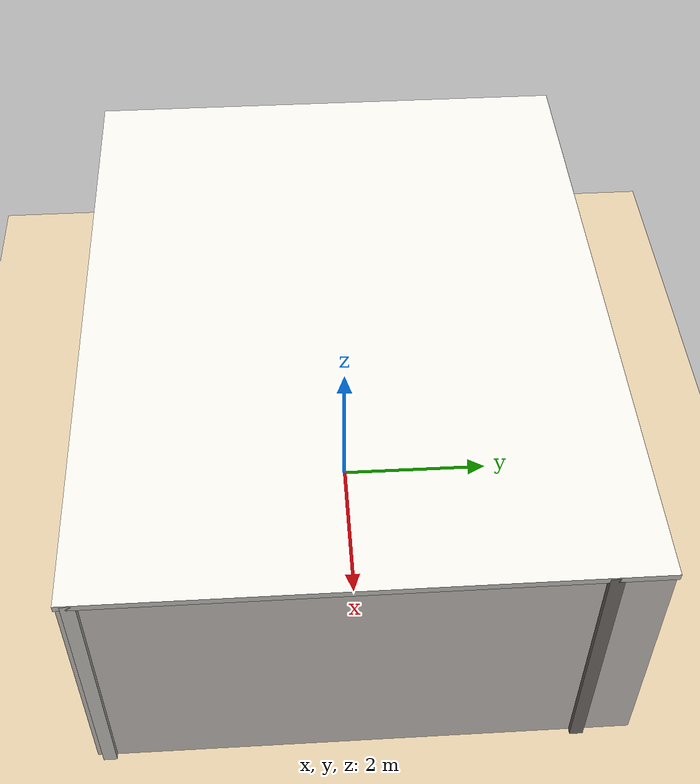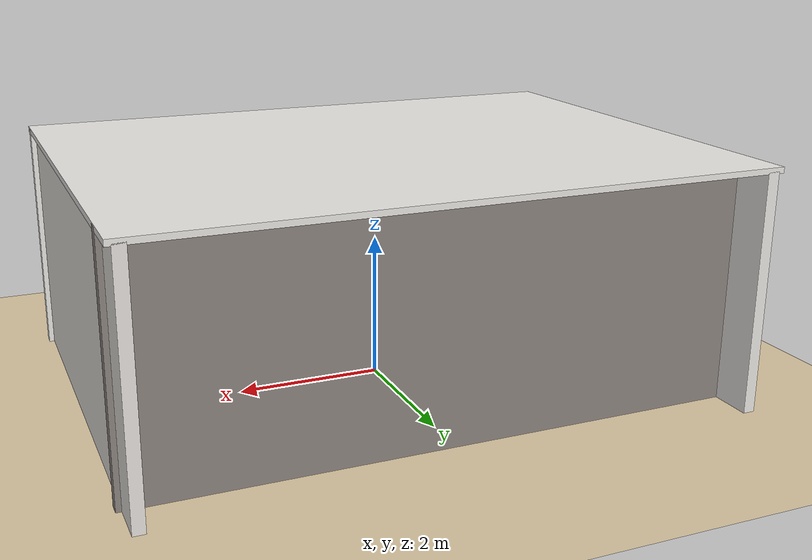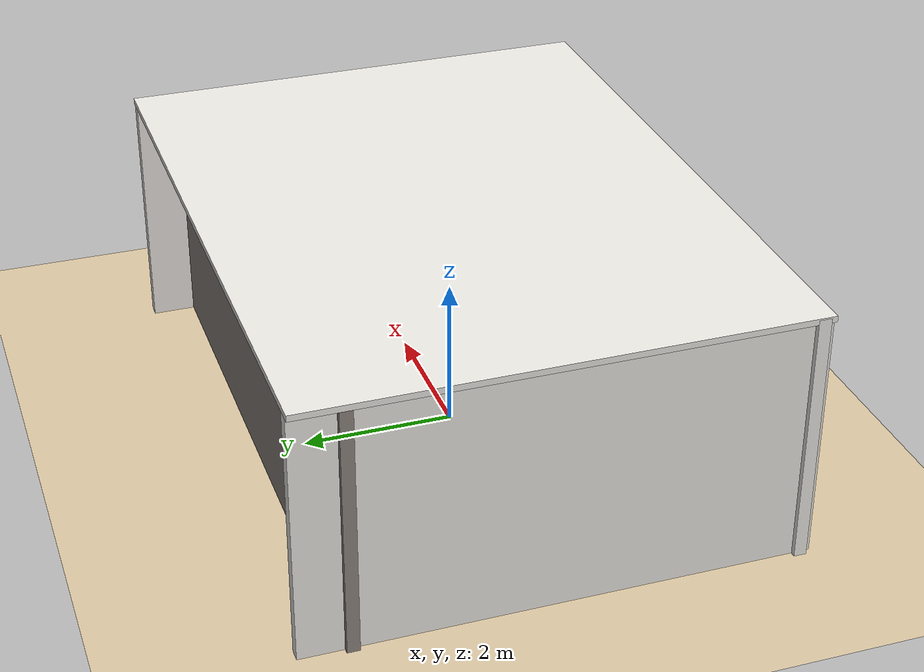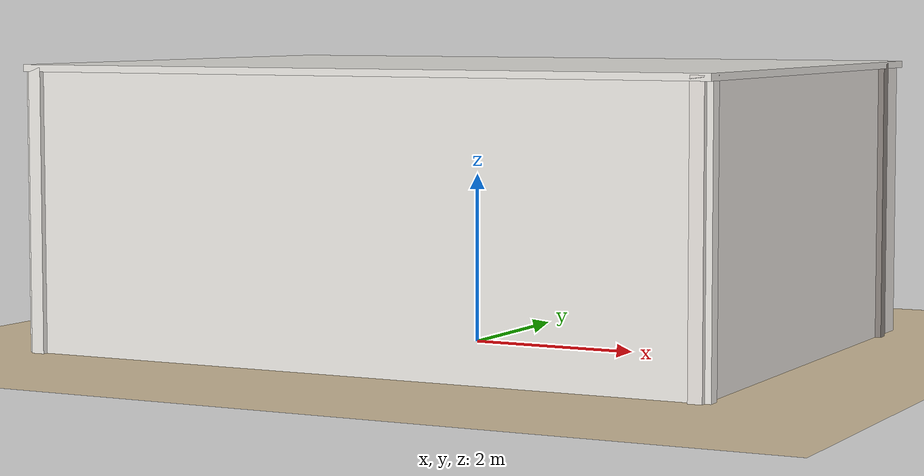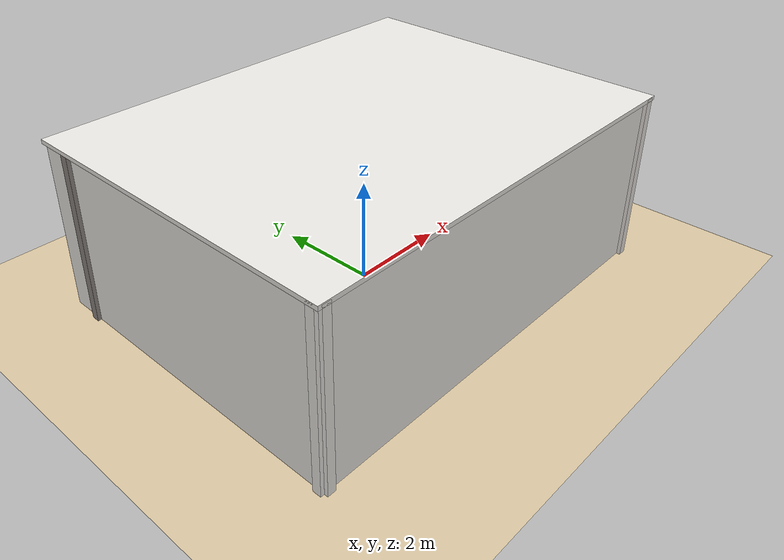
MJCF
<mujoco model="ocfo-virtual-office">
  <compiler angle="radian" autolimits="true" inertiafromgeom="true"/>
  <option gravity="0 0 -9.81" timestep="0.002" iterations="50" solver="Newton" cone="pyramidal">
    <flag contact="enable" energy="enable"/>
  </option>
  <visual>
    <headlight ambient="0.35 0.34 0.32" diffuse="0.45 0.44 0.40"/>
    <global offwidth="1280" offheight="720"/>
  </visual>
  <default>
    <joint limited="true" armature="0.02" damping="0.4"/>
    <geom condim="3" solref="0.02 1" solimp="0.9 0.95 0.001"/>
  </default>
  <asset>
    <texture name="wood" type="2d" builtin="checker" width="256" height="256" rgb1="0.80 0.70 0.54" rgb2="0.74 0.64 0.48"/>
    <material name="floor_mat" texture="wood" texrepeat="8 8" reflectance="0.08"/>
  </asset>

    <worldbody>
      <light name="sun" directional="true" pos="0 0 4" dir="0.2 0.2 -1" diffuse="0.55 0.52 0.48" specular="0.15 0.15 0.15"/>
      <light name="shelf" pos="1.15 2.05 2.1" dir="0 0 -1" diffuse="1.0 0.78 0.45" specular="0.3 0.2 0.1"/>
      <light name="spots" pos="-1.2 -0.4 3.1" dir="0.1 0.2 -1" diffuse="0.9 0.88 0.82"/>

      <geom name="floor" type="plane" size="6 6 0.1" rgba="0.86 0.78 0.64 1" friction="0.9 0.1 0.1"/>
      <geom name="ceiling" type="box" size="4.2 3.2 0.04" pos="0 0 3.28" rgba="0.93 0.92 0.90 1" contype="0" conaffinity="0"/>

      <geom name="wall_back" type="box" size="4.2 0.08 1.65" pos="0 2.55 1.65" rgba="0.55 0.52 0.50 1"/>
      <geom name="wall_right" type="box" size="0.08 3.2 1.65" pos="4.05 0 1.65" rgba="0.92 0.90 0.88 1"/>
      <geom name="wall_left" type="box" size="0.08 3.2 1.65" pos="-4.05 0 1.65" rgba="0.93 0.92 0.90 1"/>
      <geom name="wall_front" type="box" size="4.2 0.08 1.65" pos="0 -3.05 1.65" rgba="0.93 0.92 0.90 1" contype="0" conaffinity="0"/>

      <geom name="door" type="box" size="0.06 0.45 1.1" pos="-3.95 -2.35 1.15" rgba="0.12 0.12 0.12 1"/>

      <geom name="slat_0" type="box" size="0.025 0.035 1.35" pos="-3.550 -1.550 1.35" rgba="0.42 0.30 0.20 1" friction="0.8 0.1 0.1"/>
      <geom name="slat_1" type="box" size="0.025 0.035 1.35" pos="-3.550 -1.420 1.35" rgba="0.42 0.30 0.20 1" friction="0.8 0.1 0.1"/>
      <geom name="slat_2" type="box" size="0.025 0.035 1.35" pos="-3.550 -1.290 1.35" rgba="0.42 0.30 0.20 1" friction="0.8 0.1 0.1"/>
      <geom name="slat_3" type="box" size="0.025 0.035 1.35" pos="-3.550 -1.160 1.35" rgba="0.42 0.30 0.20 1" friction="0.8 0.1 0.1"/>
      <geom name="slat_4" type="box" size="0.025 0.035 1.35" pos="-3.550 -1.030 1.35" rgba="0.42 0.30 0.20 1" friction="0.8 0.1 0.1"/>
      <geom name="slat_5" type="box" size="0.025 0.035 1.35" pos="-3.550 -0.900 1.35" rgba="0.42 0.30 0.20 1" friction="0.8 0.1 0.1"/>
      <geom name="slat_6" type="box" size="0.025 0.035 1.35" pos="-3.550 -0.770 1.35" rgba="0.42 0.30 0.20 1" friction="0.8 0.1 0.1"/>
      <geom name="slat_7" type="box" size="0.025 0.035 1.35" pos="-3.550 -0.640 1.35" rgba="0.42 0.30 0.20 1" friction="0.8 0.1 0.1"/>
      <geom name="slat_8" type="box" size="0.025 0.035 1.35" pos="-3.550 -0.510 1.35" rgba="0.42 0.30 0.20 1" friction="0.8 0.1 0.1"/>
      <geom name="slat_9" type="box" size="0.025 0.035 1.35" pos="-3.550 -0.380 1.35" rgba="0.42 0.30 0.20 1" friction="0.8 0.1 0.1"/>
      <geom name="slat_10" type="box" size="0.025 0.035 1.35" pos="-3.550 -0.250 1.35" rgba="0.42 0.30 0.20 1" friction="0.8 0.1 0.1"/>
      <geom name="slat_11" type="box" size="0.025 0.035 1.35" pos="-3.550 -0.120 1.35" rgba="0.42 0.30 0.20 1" friction="0.8 0.1 0.1"/>
      <geom name="slat_12" type="box" size="0.025 0.035 1.35" pos="-3.550 0.010 1.35" rgba="0.42 0.30 0.20 1" friction="0.8 0.1 0.1"/>
      <geom name="slat_13" type="box" size="0.025 0.035 1.35" pos="-3.550 0.140 1.35" rgba="0.42 0.30 0.20 1" friction="0.8 0.1 0.1"/>
      <geom name="slat_14" type="box" size="0.025 0.035 1.35" pos="-3.550 0.270 1.35" rgba="0.42 0.30 0.20 1" friction="0.8 0.1 0.1"/>
      <geom name="slat_15" type="box" size="0.025 0.035 1.35" pos="-3.550 0.400 1.35" rgba="0.42 0.30 0.20 1" friction="0.8 0.1 0.1"/>
      <geom name="planter" type="box" size="0.28 1.05 0.22" pos="-3.15 0.15 0.22" rgba="0.22 0.22 0.22 1"/>
      <geom name="hedge" type="box" size="0.22 0.95 0.55" pos="-3.15 0.15 0.95" rgba="0.22 0.38 0.24 1"/>

      <geom name="cabinets" type="box" size="1.55 0.18 1.55" pos="1.85 2.28 1.55" rgba="0.48 0.45 0.43 1"/>
      <geom name="sideboard" type="box" size="1.15 0.28 0.32" pos="2.05 1.95 0.32" rgba="0.94 0.93 0.91 1"/>
      <geom name="vase_a" type="cylinder" size="0.05 0.08" pos="2.55 1.95 0.72" rgba="0.95 0.95 0.94 1"/>
      <geom name="vase_b" type="sphere" size="0.07" pos="2.75 1.95 0.72" rgba="0.96 0.96 0.95 1"/>

      <geom name="shelf_case" type="box" size="0.22 0.18 1.35" pos="0.22 2.28 1.55" rgba="0.40 0.28 0.18 1"/>
      <geom name="book1" type="box" size="0.12 0.08 0.16" pos="0.22 2.12 0.85" rgba="0.75 0.78 0.82 1"/>
      <geom name="book2" type="box" size="0.12 0.08 0.14" pos="0.22 2.12 1.35" rgba="0.55 0.45 0.35 1"/>
      <geom name="book3" type="box" size="0.12 0.08 0.12" pos="0.22 2.12 1.85" rgba="0.85 0.82 0.76 1"/>
      <geom name="obj_shelf" type="sphere" size="0.07" pos="0.22 2.12 2.35" rgba="0.93 0.93 0.92 1"/>

      <geom name="desk_top" type="box" size="1.35 0.55 0.05" pos="0.15 0.35 0.74" rgba="0.82 0.80 0.77 1"/>
      <geom name="desk_ped_l" type="box" size="0.28 0.48 0.34" pos="-0.85 0.35 0.36" rgba="0.80 0.78 0.75 1"/>
      <geom name="desk_ped_r" type="box" size="0.28 0.48 0.34" pos="1.15 0.35 0.36" rgba="0.80 0.78 0.75 1"/>
      <geom name="laptop" type="box" size="0.22 0.14 0.012" pos="0.45 0.28 0.81" rgba="0.12 0.12 0.12 1"/>
      <geom name="laptop_lid" type="box" size="0.22 0.01 0.12" pos="0.45 0.42 0.93" rgba="0.14 0.14 0.14 1"/>
      <geom name="papers" type="box" size="0.12 0.09 0.01" pos="-0.45 0.22 0.80" rgba="0.93 0.93 0.91 1"/>

      <geom name="chair_seat" type="box" size="0.22 0.22 0.05" pos="0.15 1.05 0.48" rgba="0.84 0.82 0.79 1"/>
      <geom name="chair_back" type="box" size="0.22 0.04 0.28" pos="0.15 1.24 0.78" rgba="0.84 0.82 0.79 1"/>

      <geom name="coffee_table" type="box" size="0.70 0.45 0.08" pos="-0.15 -1.85 0.18" rgba="0.12 0.12 0.12 1"/>
      <geom name="magazine" type="box" size="0.16 0.11 0.01" pos="-0.35 -1.75 0.27" rgba="0.9 0.9 0.88 1"/>
      <geom name="sculpture" type="box" size="0.08 0.08 0.02" pos="0.15 -1.85 0.28" rgba="0.92 0.92 0.90 1"/>

      <geom name="linear_light_1" type="capsule" size="0.02" fromto="-0.2 1.4 3.18  1.6 -0.6 3.18" rgba="0.95 0.95 0.92 1" contype="0" conaffinity="0"/>
      <geom name="linear_light_2" type="capsule" size="0.02" fromto="0.4 1.5 3.18  2.2 -0.5 3.18" rgba="0.95 0.95 0.92 1" contype="0" conaffinity="0"/>

      <!-- Flying ragdoll: freejoint torso, hinge limbs. -->
      <body name="torso" pos="0.1 0.2 1.55">
        <freejoint name="root"/>
        <inertial pos="0 0 0" mass="12" diaginertia="0.18 0.22 0.12"/>
        <geom name="torso_g" type="capsule" fromto="0 0 -0.16  0 0 0.18" size="0.11" rgba="0.78 0.74 0.70 1" friction="0.6 0.1 0.1"/>
        <site name="thrust" pos="0 0 0" size="0.03"/>
        <site name="cam_chest" pos="0 -0.12 0.05" size="0.02"/>

        <body name="head" pos="0 0 0.32">
          <inertial pos="0 0 0.05" mass="3.2" diaginertia="0.03 0.03 0.02"/>
          <joint name="neck" type="hinge" axis="1 0 0" range="-0.7 0.7" damping="1.2" stiffness="4"/>
          <geom name="head_g" type="sphere" size="0.10" pos="0 0 0.06" rgba="0.86 0.78 0.72 1"/>
        </body>

        <body name="uarm_l" pos="-0.16 0 0.12">
          <inertial pos="0 0 -0.12" mass="1.6" diaginertia="0.02 0.02 0.006"/>
          <joint name="shoulder_l" type="hinge" axis="0 1 0" range="-2.4 1.2" damping="0.4" stiffness="1.2"/>
          <geom name="uarm_l_g" type="capsule" fromto="0 0 0  0 0 -0.24" size="0.045" rgba="0.76 0.72 0.68 1"/>
          <body name="larm_l" pos="0 0 -0.26">
            <inertial pos="0 0 -0.11" mass="1.1" diaginertia="0.012 0.012 0.004"/>
            <joint name="elbow_l" type="hinge" axis="0 1 0" range="-2.2 0" damping="0.35" stiffness="0.8"/>
            <geom name="larm_l_g" type="capsule" fromto="0 0 0  0 0 -0.22" size="0.038" rgba="0.80 0.76 0.72 1"/>
          </body>
        </body>

        <body name="uarm_r" pos="0.16 0 0.12">
          <inertial pos="0 0 -0.12" mass="1.6" diaginertia="0.02 0.02 0.006"/>
          <joint name="shoulder_r" type="hinge" axis="0 1 0" range="-1.2 2.4" damping="0.4" stiffness="1.2"/>
          <geom name="uarm_r_g" type="capsule" fromto="0 0 0  0 0 -0.24" size="0.045" rgba="0.76 0.72 0.68 1"/>
          <body name="larm_r" pos="0 0 -0.26">
            <inertial pos="0 0 -0.11" mass="1.1" diaginertia="0.012 0.012 0.004"/>
            <joint name="elbow_r" type="hinge" axis="0 1 0" range="0 2.2" damping="0.35" stiffness="0.8"/>
            <geom name="larm_r_g" type="capsule" fromto="0 0 0  0 0 -0.22" size="0.038" rgba="0.80 0.76 0.72 1"/>
          </body>
        </body>

        <body name="uleg_l" pos="-0.08 0 -0.20">
          <inertial pos="0 0 -0.16" mass="3.4" diaginertia="0.04 0.04 0.01"/>
          <joint name="hip_l" type="hinge" axis="1 0 0" range="-1.4 0.6" damping="0.6" stiffness="2"/>
          <geom name="uleg_l_g" type="capsule" fromto="0 0 0  0 0 -0.32" size="0.055" rgba="0.55 0.56 0.58 1"/>
          <body name="lleg_l" pos="0 0 -0.34">
            <inertial pos="0 0 -0.14" mass="2.2" diaginertia="0.025 0.025 0.006"/>
            <joint name="knee_l" type="hinge" axis="1 0 0" range="0 2.1" damping="0.5" stiffness="1.4"/>
            <geom name="lleg_l_g" type="capsule" fromto="0 0 0  0 0 -0.30" size="0.045" rgba="0.50 0.51 0.53 1"/>
          </body>
        </body>

        <body name="uleg_r" pos="0.08 0 -0.20">
          <inertial pos="0 0 -0.16" mass="3.4" diaginertia="0.04 0.04 0.01"/>
          <joint name="hip_r" type="hinge" axis="1 0 0" range="-1.4 0.6" damping="0.6" stiffness="2"/>
          <geom name="uleg_r_g" type="capsule" fromto="0 0 0  0 0 -0.32" size="0.055" rgba="0.55 0.56 0.58 1"/>
          <body name="lleg_r" pos="0 0 -0.34">
            <inertial pos="0 0 -0.14" mass="2.2" diaginertia="0.025 0.025 0.006"/>
            <joint name="knee_r" type="hinge" axis="1 0 0" range="0 2.1" damping="0.5" stiffness="1.4"/>
            <geom name="lleg_r_g" type="capsule" fromto="0 0 0  0 0 -0.30" size="0.045" rgba="0.50 0.51 0.53 1"/>
          </body>
        </body>
      </body>
    </worldbody>

  <actuator>
    <general name="fx" site="thrust" gear="1 0 0 0 0 0" ctrlrange="-80 80"/>
    <general name="fy" site="thrust" gear="0 1 0 0 0 0" ctrlrange="-80 80"/>
    <general name="fz" site="thrust" gear="0 0 1 0 0 0" ctrlrange="-120 160"/>
    <general name="tx" site="thrust" gear="0 0 0 1 0 0" ctrlrange="-25 25"/>
    <general name="ty" site="thrust" gear="0 0 0 0 1 0" ctrlrange="-25 25"/>
    <general name="tz" site="thrust" gear="0 0 0 0 0 1" ctrlrange="-20 20"/>
  </actuator>
  <sensor>
    <framepos name="torso_pos" objtype="body" objname="torso"/>
    <framequat name="torso_quat" objtype="body" objname="torso"/>
    <framelinvel name="torso_vel" objtype="body" objname="torso"/>
  </sensor>
  <keyframe>
    <key name="hover" qpos="0.1 0.2 1.55 1 0 0 0  0 0 0 0 0 0 0 0"/>
  </keyframe>
</mujoco>
